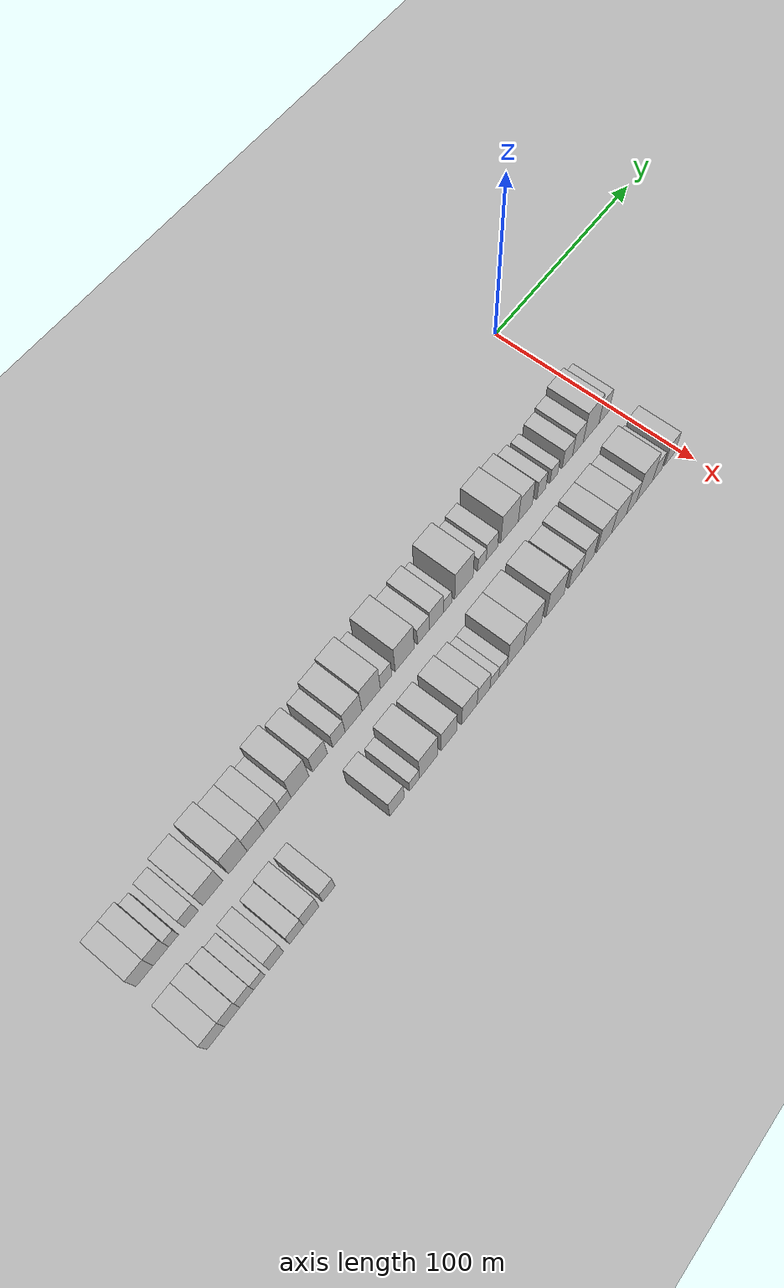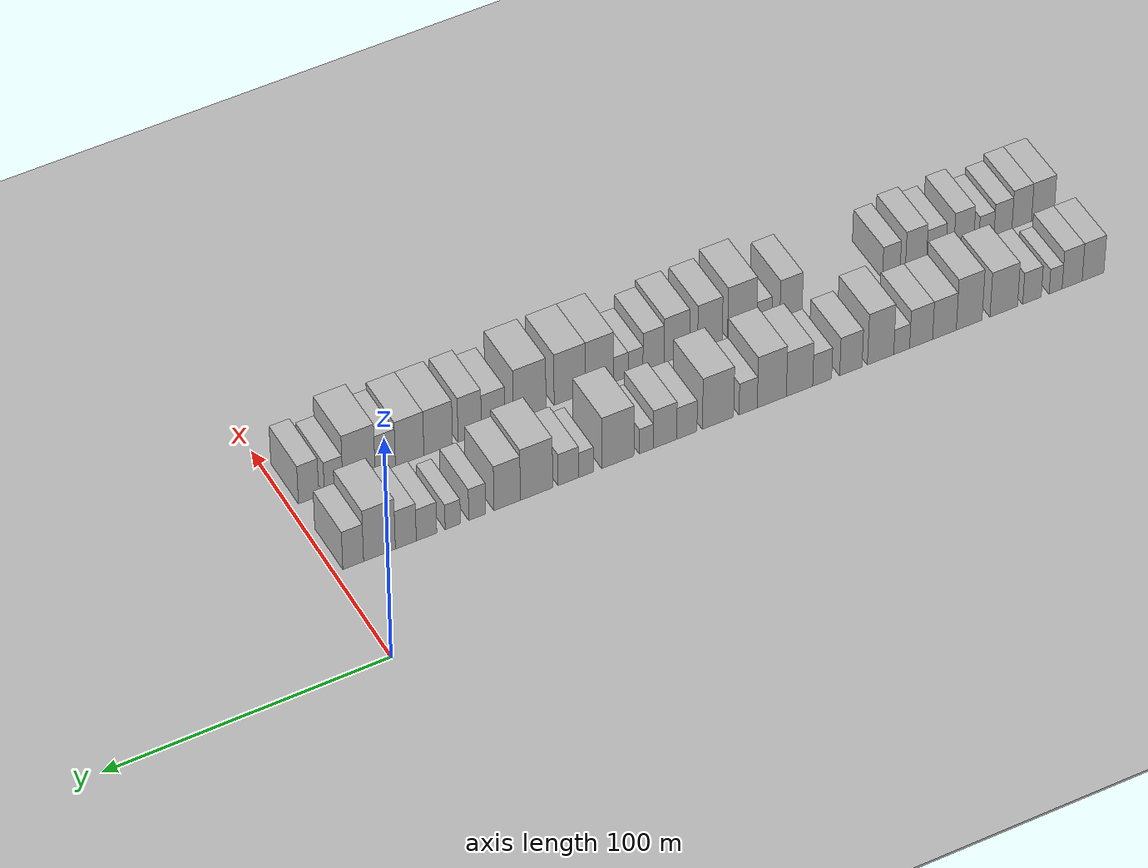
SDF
<sdf version="1.6">
 <world name="default">
  <include><name>ground_plane_1</name><uri>model://HANNAS_ground_plane</uri></include>
  <include>
   <name>ground_plane_2</name>
   <uri>model://HANNAS_ground_plane</uri>
   <pose>100 0 0  0 0 0</pose>
  </include>
  <model name="building_1">
   <static>1</static>
   <pose>50.0000 -279.8190 0 0.000000 0.000000 0.000000</pose>
   <link name="link">
    <pose>0 0 9.00 0 0 0</pose>
    <collision name="collision"><geometry><box><size>20.0000 8.3619 18.0000</size></box></geometry></collision>
    <visual name="visual">
     <cast_shadows>0</cast_shadows>
     <geometry><box><size>20.0000 8.3619 18.0000</size></box></geometry>
     <material>
      <script>
       <uri>model://HANNAS_wall/materials/scripts</uri>
       <uri>model://HANNAS_wall/materials/textures</uri>
       <name>vrc/HANNAS_wall</name>
      </script>
     </material>
    </visual>
   </link>
  </model>
  <model name="building_2">
   <static>1</static>
   <pose>50.0000 -271.7829 0 0.000000 0.000000 0.000000</pose>
   <link name="link">
    <pose>0 0 9.00 0 0 0</pose>
    <collision name="collision"><geometry><box><size>20.0000 7.7102 18.0000</size></box></geometry></collision>
    <visual name="visual">
     <cast_shadows>0</cast_shadows>
     <geometry><box><size>20.0000 7.7102 18.0000</size></box></geometry>
     <material>
      <script>
       <uri>model://HANNAS_wall/materials/scripts</uri>
       <uri>model://HANNAS_wall/materials/textures</uri>
       <name>vrc/HANNAS_wall</name>
      </script>
     </material>
    </visual>
   </link>
  </model>
  <model name="building_3">
   <static>1</static>
   <pose>50.0000 -265.4402 0 0.000000 0.000000 0.000000</pose>
   <link name="link">
    <pose>0 0 6.00 0 0 0</pose>
    <collision name="collision"><geometry><box><size>20.0000 4.9754 12.0000</size></box></geometry></collision>
    <visual name="visual">
     <cast_shadows>0</cast_shadows>
     <geometry><box><size>20.0000 4.9754 12.0000</size></box></geometry>
     <material>
      <script>
       <uri>model://HANNAS_wall/materials/scripts</uri>
       <uri>model://HANNAS_wall/materials/textures</uri>
       <name>vrc/HANNAS_wall</name>
      </script>
     </material>
    </visual>
   </link>
  </model>
  <model name="building_4">
   <static>1</static>
   <pose>50.0000 -256.4035 0 0.000000 0.000000 0.000000</pose>
   <link name="link">
    <pose>0 0 7.50 0 0 0</pose>
    <collision name="collision"><geometry><box><size>20.0000 7.0979 15.0000</size></box></geometry></collision>
    <visual name="visual">
     <cast_shadows>0</cast_shadows>
     <geometry><box><size>20.0000 7.0979 15.0000</size></box></geometry>
     <material>
      <script>
       <uri>model://HANNAS_wall/materials/scripts</uri>
       <uri>model://HANNAS_wall/materials/textures</uri>
       <name>vrc/HANNAS_wall</name>
      </script>
     </material>
    </visual>
   </link>
  </model>
  <model name="building_5">
   <static>1</static>
   <pose>50.0000 -245.6082 0 0.000000 0.000000 0.000000</pose>
   <link name="link">
    <pose>0 0 10.50 0 0 0</pose>
    <collision name="collision"><geometry><box><size>20.0000 10.4927 21.0000</size></box></geometry></collision>
    <visual name="visual">
     <cast_shadows>0</cast_shadows>
     <geometry><box><size>20.0000 10.4927 21.0000</size></box></geometry>
     <material>
      <script>
       <uri>model://HANNAS_wall/materials/scripts</uri>
       <uri>model://HANNAS_wall/materials/textures</uri>
       <name>vrc/HANNAS_wall</name>
      </script>
     </material>
    </visual>
   </link>
  </model>
  <model name="building_6">
   <static>1</static>
   <pose>50.0000 -232.4707 0 0.000000 0.000000 0.000000</pose>
   <link name="link">
    <pose>0 0 12.00 0 0 0</pose>
    <collision name="collision"><geometry><box><size>20.0000 9.7823 24.0000</size></box></geometry></collision>
    <visual name="visual">
     <cast_shadows>0</cast_shadows>
     <geometry><box><size>20.0000 9.7823 24.0000</size></box></geometry>
     <material>
      <script>
       <uri>model://HANNAS_wall/materials/scripts</uri>
       <uri>model://HANNAS_wall/materials/textures</uri>
       <name>vrc/HANNAS_wall</name>
      </script>
     </material>
    </visual>
   </link>
  </model>
  <model name="building_7">
   <static>1</static>
   <pose>50.0000 -223.0820 0 0.000000 0.000000 0.000000</pose>
   <link name="link">
    <pose>0 0 9.00 0 0 0</pose>
    <collision name="collision"><geometry><box><size>20.0000 8.9953 18.0000</size></box></geometry></collision>
    <visual name="visual">
     <cast_shadows>0</cast_shadows>
     <geometry><box><size>20.0000 8.9953 18.0000</size></box></geometry>
     <material>
      <script>
       <uri>model://HANNAS_wall/materials/scripts</uri>
       <uri>model://HANNAS_wall/materials/textures</uri>
       <name>vrc/HANNAS_wall</name>
      </script>
     </material>
    </visual>
   </link>
  </model>
  <model name="building_8">
   <static>1</static>
   <pose>50.0000 -214.2455 0 0.000000 0.000000 0.000000</pose>
   <link name="link">
    <pose>0 0 9.00 0 0 0</pose>
    <collision name="collision"><geometry><box><size>20.0000 8.6777 18.0000</size></box></geometry></collision>
    <visual name="visual">
     <cast_shadows>0</cast_shadows>
     <geometry><box><size>20.0000 8.6777 18.0000</size></box></geometry>
     <material>
      <script>
       <uri>model://HANNAS_wall/materials/scripts</uri>
       <uri>model://HANNAS_wall/materials/textures</uri>
       <name>vrc/HANNAS_wall</name>
      </script>
     </material>
    </visual>
   </link>
  </model>
  <model name="building_9">
   <static>1</static>
   <pose>50.0000 -206.9102 0 0.000000 0.000000 0.000000</pose>
   <link name="link">
    <pose>0 0 6.00 0 0 0</pose>
    <collision name="collision"><geometry><box><size>20.0000 5.9929 12.0000</size></box></geometry></collision>
    <visual name="visual">
     <cast_shadows>0</cast_shadows>
     <geometry><box><size>20.0000 5.9929 12.0000</size></box></geometry>
     <material>
      <script>
       <uri>model://HANNAS_wall/materials/scripts</uri>
       <uri>model://HANNAS_wall/materials/textures</uri>
       <name>vrc/HANNAS_wall</name>
      </script>
     </material>
    </visual>
   </link>
  </model>
  <model name="building_10">
   <static>1</static>
   <pose>50.0000 -198.9653 0 0.000000 0.000000 0.000000</pose>
   <link name="link">
    <pose>0 0 12.00 0 0 0</pose>
    <collision name="collision"><geometry><box><size>20.0000 9.8969 24.0000</size></box></geometry></collision>
    <visual name="visual">
     <cast_shadows>0</cast_shadows>
     <geometry><box><size>20.0000 9.8969 24.0000</size></box></geometry>
     <material>
      <script>
       <uri>model://HANNAS_wall/materials/scripts</uri>
       <uri>model://HANNAS_wall/materials/textures</uri>
       <name>vrc/HANNAS_wall</name>
      </script>
     </material>
    </visual>
   </link>
  </model>
  <model name="building_11">
   <static>1</static>
   <pose>50.0000 -187.8194 0 0.000000 0.000000 0.000000</pose>
   <link name="link">
    <pose>0 0 9.00 0 0 0</pose>
    <collision name="collision"><geometry><box><size>20.0000 8.3949 18.0000</size></box></geometry></collision>
    <visual name="visual">
     <cast_shadows>0</cast_shadows>
     <geometry><box><size>20.0000 8.3949 18.0000</size></box></geometry>
     <material>
      <script>
       <uri>model://HANNAS_wall/materials/scripts</uri>
       <uri>model://HANNAS_wall/materials/textures</uri>
       <name>vrc/HANNAS_wall</name>
      </script>
     </material>
    </visual>
   </link>
  </model>
  <model name="building_12">
   <static>1</static>
   <pose>50.0000 -177.0867 0 0.000000 0.000000 0.000000</pose>
   <link name="link">
    <pose>0 0 7.50 0 0 0</pose>
    <collision name="collision"><geometry><box><size>20.0000 7.0706 15.0000</size></box></geometry></collision>
    <visual name="visual">
     <cast_shadows>0</cast_shadows>
     <geometry><box><size>20.0000 7.0706 15.0000</size></box></geometry>
     <material>
      <script>
       <uri>model://HANNAS_wall/materials/scripts</uri>
       <uri>model://HANNAS_wall/materials/textures</uri>
       <name>vrc/HANNAS_wall</name>
      </script>
     </material>
    </visual>
   </link>
  </model>
  <model name="building_13">
   <static>1</static>
   <pose>50.0000 -168.6290 0 0.000000 0.000000 0.000000</pose>
   <link name="link">
    <pose>0 0 10.50 0 0 0</pose>
    <collision name="collision"><geometry><box><size>20.0000 9.8448 21.0000</size></box></geometry></collision>
    <visual name="visual">
     <cast_shadows>0</cast_shadows>
     <geometry><box><size>20.0000 9.8448 21.0000</size></box></geometry>
     <material>
      <script>
       <uri>model://HANNAS_wall/materials/scripts</uri>
       <uri>model://HANNAS_wall/materials/textures</uri>
       <name>vrc/HANNAS_wall</name>
      </script>
     </material>
    </visual>
   </link>
  </model>
  <model name="building_14">
   <static>1</static>
   <pose>50.0000 -158.3106 0 0.000000 0.000000 0.000000</pose>
   <link name="link">
    <pose>0 0 12.00 0 0 0</pose>
    <collision name="collision"><geometry><box><size>20.0000 10.7921 24.0000</size></box></geometry></collision>
    <visual name="visual">
     <cast_shadows>0</cast_shadows>
     <geometry><box><size>20.0000 10.7921 24.0000</size></box></geometry>
     <material>
      <script>
       <uri>model://HANNAS_wall/materials/scripts</uri>
       <uri>model://HANNAS_wall/materials/textures</uri>
       <name>vrc/HANNAS_wall</name>
      </script>
     </material>
    </visual>
   </link>
  </model>
  <model name="building_15">
   <static>1</static>
   <pose>50.0000 -149.5389 0 0.000000 0.000000 0.000000</pose>
   <link name="link">
    <pose>0 0 7.50 0 0 0</pose>
    <collision name="collision"><geometry><box><size>20.0000 6.7513 15.0000</size></box></geometry></collision>
    <visual name="visual">
     <cast_shadows>0</cast_shadows>
     <geometry><box><size>20.0000 6.7513 15.0000</size></box></geometry>
     <material>
      <script>
       <uri>model://HANNAS_wall/materials/scripts</uri>
       <uri>model://HANNAS_wall/materials/textures</uri>
       <name>vrc/HANNAS_wall</name>
      </script>
     </material>
    </visual>
   </link>
  </model>
  <model name="building_16">
   <static>1</static>
   <pose>50.0000 -138.3980 0 0.000000 0.000000 0.000000</pose>
   <link name="link">
    <pose>0 0 12.00 0 0 0</pose>
    <collision name="collision"><geometry><box><size>20.0000 11.5305 24.0000</size></box></geometry></collision>
    <visual name="visual">
     <cast_shadows>0</cast_shadows>
     <geometry><box><size>20.0000 11.5305 24.0000</size></box></geometry>
     <material>
      <script>
       <uri>model://HANNAS_wall/materials/scripts</uri>
       <uri>model://HANNAS_wall/materials/textures</uri>
       <name>vrc/HANNAS_wall</name>
      </script>
     </material>
    </visual>
   </link>
  </model>
  <model name="building_17">
   <static>1</static>
   <pose>50.0000 -126.9144 0 0.000000 0.000000 0.000000</pose>
   <link name="link">
    <pose>0 0 7.50 0 0 0</pose>
    <collision name="collision"><geometry><box><size>20.0000 7.4367 15.0000</size></box></geometry></collision>
    <visual name="visual">
     <cast_shadows>0</cast_shadows>
     <geometry><box><size>20.0000 7.4367 15.0000</size></box></geometry>
     <material>
      <script>
       <uri>model://HANNAS_wall/materials/scripts</uri>
       <uri>model://HANNAS_wall/materials/textures</uri>
       <name>vrc/HANNAS_wall</name>
      </script>
     </material>
    </visual>
   </link>
  </model>
  <model name="building_18">
   <static>1</static>
   <pose>50.0000 -118.8978 0 0.000000 0.000000 0.000000</pose>
   <link name="link">
    <pose>0 0 9.00 0 0 0</pose>
    <collision name="collision"><geometry><box><size>20.0000 8.5964 18.0000</size></box></geometry></collision>
    <visual name="visual">
     <cast_shadows>0</cast_shadows>
     <geometry><box><size>20.0000 8.5964 18.0000</size></box></geometry>
     <material>
      <script>
       <uri>model://HANNAS_wall/materials/scripts</uri>
       <uri>model://HANNAS_wall/materials/textures</uri>
       <name>vrc/HANNAS_wall</name>
      </script>
     </material>
    </visual>
   </link>
  </model>
  <model name="building_19">
   <static>1</static>
   <pose>50.0000 -112.0478 0 0.000000 0.000000 0.000000</pose>
   <link name="link">
    <pose>0 0 6.00 0 0 0</pose>
    <collision name="collision"><geometry><box><size>20.0000 5.1036 12.0000</size></box></geometry></collision>
    <visual name="visual">
     <cast_shadows>0</cast_shadows>
     <geometry><box><size>20.0000 5.1036 12.0000</size></box></geometry>
     <material>
      <script>
       <uri>model://HANNAS_wall/materials/scripts</uri>
       <uri>model://HANNAS_wall/materials/textures</uri>
       <name>vrc/HANNAS_wall</name>
      </script>
     </material>
    </visual>
   </link>
  </model>
  <model name="building_20">
   <static>1</static>
   <pose>50.0000 -101.6275 0 0.000000 0.000000 0.000000</pose>
   <link name="link">
    <pose>0 0 12.00 0 0 0</pose>
    <collision name="collision"><geometry><box><size>20.0000 11.7370 24.0000</size></box></geometry></collision>
    <visual name="visual">
     <cast_shadows>0</cast_shadows>
     <geometry><box><size>20.0000 11.7370 24.0000</size></box></geometry>
     <material>
      <script>
       <uri>model://HANNAS_wall/materials/scripts</uri>
       <uri>model://HANNAS_wall/materials/textures</uri>
       <name>vrc/HANNAS_wall</name>
      </script>
     </material>
    </visual>
   </link>
  </model>
  <model name="building_21">
   <static>1</static>
   <pose>50.0000 -90.0536 0 0.000000 0.000000 0.000000</pose>
   <link name="link">
    <pose>0 0 6.00 0 0 0</pose>
    <collision name="collision"><geometry><box><size>20.0000 5.4109 12.0000</size></box></geometry></collision>
    <visual name="visual">
     <cast_shadows>0</cast_shadows>
     <geometry><box><size>20.0000 5.4109 12.0000</size></box></geometry>
     <material>
      <script>
       <uri>model://HANNAS_wall/materials/scripts</uri>
       <uri>model://HANNAS_wall/materials/textures</uri>
       <name>vrc/HANNAS_wall</name>
      </script>
     </material>
    </visual>
   </link>
  </model>
  <model name="building_22">
   <static>1</static>
   <pose>50.0000 -83.6219 0 0.000000 0.000000 0.000000</pose>
   <link name="link">
    <pose>0 0 7.50 0 0 0</pose>
    <collision name="collision"><geometry><box><size>20.0000 7.4524 15.0000</size></box></geometry></collision>
    <visual name="visual">
     <cast_shadows>0</cast_shadows>
     <geometry><box><size>20.0000 7.4524 15.0000</size></box></geometry>
     <material>
      <script>
       <uri>model://HANNAS_wall/materials/scripts</uri>
       <uri>model://HANNAS_wall/materials/textures</uri>
       <name>vrc/HANNAS_wall</name>
      </script>
     </material>
    </visual>
   </link>
  </model>
  <model name="building_23">
   <static>1</static>
   <pose>50.0000 -72.0594 0 0.000000 0.000000 0.000000</pose>
   <link name="link">
    <pose>0 0 12.00 0 0 0</pose>
    <collision name="collision"><geometry><box><size>20.0000 11.6725 24.0000</size></box></geometry></collision>
    <visual name="visual">
     <cast_shadows>0</cast_shadows>
     <geometry><box><size>20.0000 11.6725 24.0000</size></box></geometry>
     <material>
      <script>
       <uri>model://HANNAS_wall/materials/scripts</uri>
       <uri>model://HANNAS_wall/materials/textures</uri>
       <name>vrc/HANNAS_wall</name>
      </script>
     </material>
    </visual>
   </link>
  </model>
  <model name="building_24">
   <static>1</static>
   <pose>50.0000 -61.4678 0 0.000000 0.000000 0.000000</pose>
   <link name="link">
    <pose>0 0 10.50 0 0 0</pose>
    <collision name="collision"><geometry><box><size>20.0000 9.5107 21.0000</size></box></geometry></collision>
    <visual name="visual">
     <cast_shadows>0</cast_shadows>
     <geometry><box><size>20.0000 9.5107 21.0000</size></box></geometry>
     <material>
      <script>
       <uri>model://HANNAS_wall/materials/scripts</uri>
       <uri>model://HANNAS_wall/materials/textures</uri>
       <name>vrc/HANNAS_wall</name>
      </script>
     </material>
    </visual>
   </link>
  </model>
  <model name="building_25">
   <static>1</static>
   <pose>50.0000 -50.6916 0 0.000000 0.000000 0.000000</pose>
   <link name="link">
    <pose>0 0 7.50 0 0 0</pose>
    <collision name="collision"><geometry><box><size>20.0000 6.0417 15.0000</size></box></geometry></collision>
    <visual name="visual">
     <cast_shadows>0</cast_shadows>
     <geometry><box><size>20.0000 6.0417 15.0000</size></box></geometry>
     <material>
      <script>
       <uri>model://HANNAS_wall/materials/scripts</uri>
       <uri>model://HANNAS_wall/materials/textures</uri>
       <name>vrc/HANNAS_wall</name>
      </script>
     </material>
    </visual>
   </link>
  </model>
  <model name="building_26">
   <static>1</static>
   <pose>50.0000 -41.9416 0 0.000000 0.000000 0.000000</pose>
   <link name="link">
    <pose>0 0 6.00 0 0 0</pose>
    <collision name="collision"><geometry><box><size>20.0000 5.4582 12.0000</size></box></geometry></collision>
    <visual name="visual">
     <cast_shadows>0</cast_shadows>
     <geometry><box><size>20.0000 5.4582 12.0000</size></box></geometry>
     <material>
      <script>
       <uri>model://HANNAS_wall/materials/scripts</uri>
       <uri>model://HANNAS_wall/materials/textures</uri>
       <name>vrc/HANNAS_wall</name>
      </script>
     </material>
    </visual>
   </link>
  </model>
  <model name="building_27">
   <static>1</static>
   <pose>50.0000 -32.5497 0 0.000000 0.000000 0.000000</pose>
   <link name="link">
    <pose>0 0 7.50 0 0 0</pose>
    <collision name="collision"><geometry><box><size>20.0000 7.3256 15.0000</size></box></geometry></collision>
    <visual name="visual">
     <cast_shadows>0</cast_shadows>
     <geometry><box><size>20.0000 7.3256 15.0000</size></box></geometry>
     <material>
      <script>
       <uri>model://HANNAS_wall/materials/scripts</uri>
       <uri>model://HANNAS_wall/materials/textures</uri>
       <name>vrc/HANNAS_wall</name>
      </script>
     </material>
    </visual>
   </link>
  </model>
  <model name="building_28">
   <static>1</static>
   <pose>50.0000 -25.1557 0 0.000000 0.000000 0.000000</pose>
   <link name="link">
    <pose>0 0 9.00 0 0 0</pose>
    <collision name="collision"><geometry><box><size>20.0000 7.4624 18.0000</size></box></geometry></collision>
    <visual name="visual">
     <cast_shadows>0</cast_shadows>
     <geometry><box><size>20.0000 7.4624 18.0000</size></box></geometry>
     <material>
      <script>
       <uri>model://HANNAS_wall/materials/scripts</uri>
       <uri>model://HANNAS_wall/materials/textures</uri>
       <name>vrc/HANNAS_wall</name>
      </script>
     </material>
    </visual>
   </link>
  </model>
  <model name="building_29">
   <static>1</static>
   <pose>50.0000 -15.7782 0 0.000000 0.000000 0.000000</pose>
   <link name="link">
    <pose>0 0 12.00 0 0 0</pose>
    <collision name="collision"><geometry><box><size>20.0000 11.2925 24.0000</size></box></geometry></collision>
    <visual name="visual">
     <cast_shadows>0</cast_shadows>
     <geometry><box><size>20.0000 11.2925 24.0000</size></box></geometry>
     <material>
      <script>
       <uri>model://HANNAS_wall/materials/scripts</uri>
       <uri>model://HANNAS_wall/materials/textures</uri>
       <name>vrc/HANNAS_wall</name>
      </script>
     </material>
    </visual>
   </link>
  </model>
  <model name="building_30">
   <static>1</static>
   <pose>50.0000 -6.4503 0 0.000000 0.000000 0.000000</pose>
   <link name="link">
    <pose>0 0 9.00 0 0 0</pose>
    <collision name="collision"><geometry><box><size>20.0000 7.3634 18.0000</size></box></geometry></collision>
    <visual name="visual">
     <cast_shadows>0</cast_shadows>
     <geometry><box><size>20.0000 7.3634 18.0000</size></box></geometry>
     <material>
      <script>
       <uri>model://HANNAS_wall/materials/scripts</uri>
       <uri>model://HANNAS_wall/materials/textures</uri>
       <name>vrc/HANNAS_wall</name>
      </script>
     </material>
    </visual>
   </link>
  </model>
  <model name="building_61">
   <static>1</static>
   <pose>82.0000 -279.6116 0 0.000000 0.000000 0.000000</pose>
   <link name="link">
    <pose>0 0 9.00 0 0 0</pose>
    <collision name="collision"><geometry><box><size>20.0000 8.7768 18.0000</size></box></geometry></collision>
    <visual name="visual">
     <cast_shadows>0</cast_shadows>
     <geometry><box><size>20.0000 8.7768 18.0000</size></box></geometry>
     <material>
      <script>
       <uri>model://HANNAS_wall/materials/scripts</uri>
       <uri>model://HANNAS_wall/materials/textures</uri>
       <name>vrc/HANNAS_wall</name>
      </script>
     </material>
    </visual>
   </link>
  </model>
  <model name="building_62">
   <static>1</static>
   <pose>82.0000 -271.4348 0 0.000000 0.000000 0.000000</pose>
   <link name="link">
    <pose>0 0 9.00 0 0 0</pose>
    <collision name="collision"><geometry><box><size>20.0000 7.5769 18.0000</size></box></geometry></collision>
    <visual name="visual">
     <cast_shadows>0</cast_shadows>
     <geometry><box><size>20.0000 7.5769 18.0000</size></box></geometry>
     <material>
      <script>
       <uri>model://HANNAS_wall/materials/scripts</uri>
       <uri>model://HANNAS_wall/materials/textures</uri>
       <name>vrc/HANNAS_wall</name>
      </script>
     </material>
    </visual>
   </link>
  </model>
  <model name="building_63">
   <static>1</static>
   <pose>82.0000 -264.1748 0 0.000000 0.000000 0.000000</pose>
   <link name="link">
    <pose>0 0 7.50 0 0 0</pose>
    <collision name="collision"><geometry><box><size>20.0000 6.9432 15.0000</size></box></geometry></collision>
    <visual name="visual">
     <cast_shadows>0</cast_shadows>
     <geometry><box><size>20.0000 6.9432 15.0000</size></box></geometry>
     <material>
      <script>
       <uri>model://HANNAS_wall/materials/scripts</uri>
       <uri>model://HANNAS_wall/materials/textures</uri>
       <name>vrc/HANNAS_wall</name>
      </script>
     </material>
    </visual>
   </link>
  </model>
  <model name="building_64">
   <static>1</static>
   <pose>82.0000 -257.7788 0 0.000000 0.000000 0.000000</pose>
   <link name="link">
    <pose>0 0 6.00 0 0 0</pose>
    <collision name="collision"><geometry><box><size>20.0000 5.8489 12.0000</size></box></geometry></collision>
    <visual name="visual">
     <cast_shadows>0</cast_shadows>
     <geometry><box><size>20.0000 5.8489 12.0000</size></box></geometry>
     <material>
      <script>
       <uri>model://HANNAS_wall/materials/scripts</uri>
       <uri>model://HANNAS_wall/materials/textures</uri>
       <name>vrc/HANNAS_wall</name>
      </script>
     </material>
    </visual>
   </link>
  </model>
  <model name="building_65">
   <static>1</static>
   <pose>82.0000 -249.0392 0 0.000000 0.000000 0.000000</pose>
   <link name="link">
    <pose>0 0 9.00 0 0 0</pose>
    <collision name="collision"><geometry><box><size>20.0000 7.6304 18.0000</size></box></geometry></collision>
    <visual name="visual">
     <cast_shadows>0</cast_shadows>
     <geometry><box><size>20.0000 7.6304 18.0000</size></box></geometry>
     <material>
      <script>
       <uri>model://HANNAS_wall/materials/scripts</uri>
       <uri>model://HANNAS_wall/materials/textures</uri>
       <name>vrc/HANNAS_wall</name>
      </script>
     </material>
    </visual>
   </link>
  </model>
  <model name="building_66">
   <static>1</static>
   <pose>82.0000 -238.4993 0 0.000000 0.000000 0.000000</pose>
   <link name="link">
    <pose>0 0 7.50 0 0 0</pose>
    <collision name="collision"><geometry><box><size>20.0000 7.4493 15.0000</size></box></geometry></collision>
    <visual name="visual">
     <cast_shadows>0</cast_shadows>
     <geometry><box><size>20.0000 7.4493 15.0000</size></box></geometry>
     <material>
      <script>
       <uri>model://HANNAS_wall/materials/scripts</uri>
       <uri>model://HANNAS_wall/materials/textures</uri>
       <name>vrc/HANNAS_wall</name>
      </script>
     </material>
    </visual>
   </link>
  </model>
  <model name="building_67">
   <static>1</static>
   <pose>82.0000 -230.7380 0 0.000000 0.000000 0.000000</pose>
   <link name="link">
    <pose>0 0 9.00 0 0 0</pose>
    <collision name="collision"><geometry><box><size>20.0000 8.0734 18.0000</size></box></geometry></collision>
    <visual name="visual">
     <cast_shadows>0</cast_shadows>
     <geometry><box><size>20.0000 8.0734 18.0000</size></box></geometry>
     <material>
      <script>
       <uri>model://HANNAS_wall/materials/scripts</uri>
       <uri>model://HANNAS_wall/materials/textures</uri>
       <name>vrc/HANNAS_wall</name>
      </script>
     </material>
    </visual>
   </link>
  </model>
  <model name="building_68">
   <static>1</static>
   <pose>82.0000 -221.3300 0 0.000000 0.000000 0.000000</pose>
   <link name="link">
    <pose>0 0 7.50 0 0 0</pose>
    <collision name="collision"><geometry><box><size>20.0000 6.7426 15.0000</size></box></geometry></collision>
    <visual name="visual">
     <cast_shadows>0</cast_shadows>
     <geometry><box><size>20.0000 6.7426 15.0000</size></box></geometry>
     <material>
      <script>
       <uri>model://HANNAS_wall/materials/scripts</uri>
       <uri>model://HANNAS_wall/materials/textures</uri>
       <name>vrc/HANNAS_wall</name>
      </script>
     </material>
    </visual>
   </link>
  </model>
  <model name="building_69">
   <static>1</static>
   <pose>82.0000 -183.3673 0 0.000000 0.000000 0.000000</pose>
   <link name="link">
    <pose>0 0 9.00 0 0 0</pose>
    <collision name="collision"><geometry><box><size>20.0000 8.3942 18.0000</size></box></geometry></collision>
    <visual name="visual">
     <cast_shadows>0</cast_shadows>
     <geometry><box><size>20.0000 8.3942 18.0000</size></box></geometry>
     <material>
      <script>
       <uri>model://HANNAS_wall/materials/scripts</uri>
       <uri>model://HANNAS_wall/materials/textures</uri>
       <name>vrc/HANNAS_wall</name>
      </script>
     </material>
    </visual>
   </link>
  </model>
  <model name="building_70">
   <static>1</static>
   <pose>82.0000 -173.2988 0 0.000000 0.000000 0.000000</pose>
   <link name="link">
    <pose>0 0 6.00 0 0 0</pose>
    <collision name="collision"><geometry><box><size>20.0000 5.7428 12.0000</size></box></geometry></collision>
    <visual name="visual">
     <cast_shadows>0</cast_shadows>
     <geometry><box><size>20.0000 5.7428 12.0000</size></box></geometry>
     <material>
      <script>
       <uri>model://HANNAS_wall/materials/scripts</uri>
       <uri>model://HANNAS_wall/materials/textures</uri>
       <name>vrc/HANNAS_wall</name>
      </script>
     </material>
    </visual>
   </link>
  </model>
  <model name="building_71">
   <static>1</static>
   <pose>82.0000 -164.9844 0 0.000000 0.000000 0.000000</pose>
   <link name="link">
    <pose>0 0 12.00 0 0 0</pose>
    <collision name="collision"><geometry><box><size>20.0000 10.8860 24.0000</size></box></geometry></collision>
    <visual name="visual">
     <cast_shadows>0</cast_shadows>
     <geometry><box><size>20.0000 10.8860 24.0000</size></box></geometry>
     <material>
      <script>
       <uri>model://HANNAS_wall/materials/scripts</uri>
       <uri>model://HANNAS_wall/materials/textures</uri>
       <name>vrc/HANNAS_wall</name>
      </script>
     </material>
    </visual>
   </link>
  </model>
  <model name="building_72">
   <static>1</static>
   <pose>82.0000 -152.9470 0 0.000000 0.000000 0.000000</pose>
   <link name="link">
    <pose>0 0 10.50 0 0 0</pose>
    <collision name="collision"><geometry><box><size>20.0000 9.1887 21.0000</size></box></geometry></collision>
    <visual name="visual">
     <cast_shadows>0</cast_shadows>
     <geometry><box><size>20.0000 9.1887 21.0000</size></box></geometry>
     <material>
      <script>
       <uri>model://HANNAS_wall/materials/scripts</uri>
       <uri>model://HANNAS_wall/materials/textures</uri>
       <name>vrc/HANNAS_wall</name>
      </script>
     </material>
    </visual>
   </link>
  </model>
  <model name="building_73">
   <static>1</static>
   <pose>82.0000 -140.6547 0 0.000000 0.000000 0.000000</pose>
   <link name="link">
    <pose>0 0 10.50 0 0 0</pose>
    <collision name="collision"><geometry><box><size>20.0000 9.3959 21.0000</size></box></geometry></collision>
    <visual name="visual">
     <cast_shadows>0</cast_shadows>
     <geometry><box><size>20.0000 9.3959 21.0000</size></box></geometry>
     <material>
      <script>
       <uri>model://HANNAS_wall/materials/scripts</uri>
       <uri>model://HANNAS_wall/materials/textures</uri>
       <name>vrc/HANNAS_wall</name>
      </script>
     </material>
    </visual>
   </link>
  </model>
  <model name="building_74">
   <static>1</static>
   <pose>82.0000 -132.0111 0 0.000000 0.000000 0.000000</pose>
   <link name="link">
    <pose>0 0 9.00 0 0 0</pose>
    <collision name="collision"><geometry><box><size>20.0000 7.8913 18.0000</size></box></geometry></collision>
    <visual name="visual">
     <cast_shadows>0</cast_shadows>
     <geometry><box><size>20.0000 7.8913 18.0000</size></box></geometry>
     <material>
      <script>
       <uri>model://HANNAS_wall/materials/scripts</uri>
       <uri>model://HANNAS_wall/materials/textures</uri>
       <name>vrc/HANNAS_wall</name>
      </script>
     </material>
    </visual>
   </link>
  </model>
  <model name="building_75">
   <static>1</static>
   <pose>82.0000 -125.3163 0 0.000000 0.000000 0.000000</pose>
   <link name="link">
    <pose>0 0 6.00 0 0 0</pose>
    <collision name="collision"><geometry><box><size>20.0000 5.4982 12.0000</size></box></geometry></collision>
    <visual name="visual">
     <cast_shadows>0</cast_shadows>
     <geometry><box><size>20.0000 5.4982 12.0000</size></box></geometry>
     <material>
      <script>
       <uri>model://HANNAS_wall/materials/scripts</uri>
       <uri>model://HANNAS_wall/materials/textures</uri>
       <name>vrc/HANNAS_wall</name>
      </script>
     </material>
    </visual>
   </link>
  </model>
  <model name="building_76">
   <static>1</static>
   <pose>82.0000 -119.8994 0 0.000000 0.000000 0.000000</pose>
   <link name="link">
    <pose>0 0 6.00 0 0 0</pose>
    <collision name="collision"><geometry><box><size>20.0000 5.3358 12.0000</size></box></geometry></collision>
    <visual name="visual">
     <cast_shadows>0</cast_shadows>
     <geometry><box><size>20.0000 5.3358 12.0000</size></box></geometry>
     <material>
      <script>
       <uri>model://HANNAS_wall/materials/scripts</uri>
       <uri>model://HANNAS_wall/materials/textures</uri>
       <name>vrc/HANNAS_wall</name>
      </script>
     </material>
    </visual>
   </link>
  </model>
  <model name="building_77">
   <static>1</static>
   <pose>82.0000 -112.0105 0 0.000000 0.000000 0.000000</pose>
   <link name="link">
    <pose>0 0 12.00 0 0 0</pose>
    <collision name="collision"><geometry><box><size>20.0000 10.4420 24.0000</size></box></geometry></collision>
    <visual name="visual">
     <cast_shadows>0</cast_shadows>
     <geometry><box><size>20.0000 10.4420 24.0000</size></box></geometry>
     <material>
      <script>
       <uri>model://HANNAS_wall/materials/scripts</uri>
       <uri>model://HANNAS_wall/materials/textures</uri>
       <name>vrc/HANNAS_wall</name>
      </script>
     </material>
    </visual>
   </link>
  </model>
  <model name="building_78">
   <static>1</static>
   <pose>82.0000 -101.0616 0 0.000000 0.000000 0.000000</pose>
   <link name="link">
    <pose>0 0 12.00 0 0 0</pose>
    <collision name="collision"><geometry><box><size>20.0000 11.4559 24.0000</size></box></geometry></collision>
    <visual name="visual">
     <cast_shadows>0</cast_shadows>
     <geometry><box><size>20.0000 11.4559 24.0000</size></box></geometry>
     <material>
      <script>
       <uri>model://HANNAS_wall/materials/scripts</uri>
       <uri>model://HANNAS_wall/materials/textures</uri>
       <name>vrc/HANNAS_wall</name>
      </script>
     </material>
    </visual>
   </link>
  </model>
  <model name="building_79">
   <static>1</static>
   <pose>82.0000 -86.3433 0 0.000000 0.000000 0.000000</pose>
   <link name="link">
    <pose>0 0 12.00 0 0 0</pose>
    <collision name="collision"><geometry><box><size>20.0000 11.9807 24.0000</size></box></geometry></collision>
    <visual name="visual">
     <cast_shadows>0</cast_shadows>
     <geometry><box><size>20.0000 11.9807 24.0000</size></box></geometry>
     <material>
      <script>
       <uri>model://HANNAS_wall/materials/scripts</uri>
       <uri>model://HANNAS_wall/materials/textures</uri>
       <name>vrc/HANNAS_wall</name>
      </script>
     </material>
    </visual>
   </link>
  </model>
  <model name="building_80">
   <static>1</static>
   <pose>82.0000 -73.0701 0 0.000000 0.000000 0.000000</pose>
   <link name="link">
    <pose>0 0 9.00 0 0 0</pose>
    <collision name="collision"><geometry><box><size>20.0000 8.5657 18.0000</size></box></geometry></collision>
    <visual name="visual">
     <cast_shadows>0</cast_shadows>
     <geometry><box><size>20.0000 8.5657 18.0000</size></box></geometry>
     <material>
      <script>
       <uri>model://HANNAS_wall/materials/scripts</uri>
       <uri>model://HANNAS_wall/materials/textures</uri>
       <name>vrc/HANNAS_wall</name>
      </script>
     </material>
    </visual>
   </link>
  </model>
  <model name="building_81">
   <static>1</static>
   <pose>82.0000 -64.5421 0 0.000000 0.000000 0.000000</pose>
   <link name="link">
    <pose>0 0 10.50 0 0 0</pose>
    <collision name="collision"><geometry><box><size>20.0000 8.4904 21.0000</size></box></geometry></collision>
    <visual name="visual">
     <cast_shadows>0</cast_shadows>
     <geometry><box><size>20.0000 8.4904 21.0000</size></box></geometry>
     <material>
      <script>
       <uri>model://HANNAS_wall/materials/scripts</uri>
       <uri>model://HANNAS_wall/materials/textures</uri>
       <name>vrc/HANNAS_wall</name>
      </script>
     </material>
    </visual>
   </link>
  </model>
  <model name="building_82">
   <static>1</static>
   <pose>82.0000 -53.1155 0 0.000000 0.000000 0.000000</pose>
   <link name="link">
    <pose>0 0 10.50 0 0 0</pose>
    <collision name="collision"><geometry><box><size>20.0000 10.3629 21.0000</size></box></geometry></collision>
    <visual name="visual">
     <cast_shadows>0</cast_shadows>
     <geometry><box><size>20.0000 10.3629 21.0000</size></box></geometry>
     <material>
      <script>
       <uri>model://HANNAS_wall/materials/scripts</uri>
       <uri>model://HANNAS_wall/materials/textures</uri>
       <name>vrc/HANNAS_wall</name>
      </script>
     </material>
    </visual>
   </link>
  </model>
  <model name="building_83">
   <static>1</static>
   <pose>82.0000 -42.7945 0 0.000000 0.000000 0.000000</pose>
   <link name="link">
    <pose>0 0 10.50 0 0 0</pose>
    <collision name="collision"><geometry><box><size>20.0000 10.2789 21.0000</size></box></geometry></collision>
    <visual name="visual">
     <cast_shadows>0</cast_shadows>
     <geometry><box><size>20.0000 10.2789 21.0000</size></box></geometry>
     <material>
      <script>
       <uri>model://HANNAS_wall/materials/scripts</uri>
       <uri>model://HANNAS_wall/materials/textures</uri>
       <name>vrc/HANNAS_wall</name>
      </script>
     </material>
    </visual>
   </link>
  </model>
  <model name="building_84">
   <static>1</static>
   <pose>82.0000 -34.0099 0 0.000000 0.000000 0.000000</pose>
   <link name="link">
    <pose>0 0 9.00 0 0 0</pose>
    <collision name="collision"><geometry><box><size>20.0000 7.2905 18.0000</size></box></geometry></collision>
    <visual name="visual">
     <cast_shadows>0</cast_shadows>
     <geometry><box><size>20.0000 7.2905 18.0000</size></box></geometry>
     <material>
      <script>
       <uri>model://HANNAS_wall/materials/scripts</uri>
       <uri>model://HANNAS_wall/materials/textures</uri>
       <name>vrc/HANNAS_wall</name>
      </script>
     </material>
    </visual>
   </link>
  </model>
  <model name="building_85">
   <static>1</static>
   <pose>82.0000 -24.5739 0 0.000000 0.000000 0.000000</pose>
   <link name="link">
    <pose>0 0 12.00 0 0 0</pose>
    <collision name="collision"><geometry><box><size>20.0000 11.5815 24.0000</size></box></geometry></collision>
    <visual name="visual">
     <cast_shadows>0</cast_shadows>
     <geometry><box><size>20.0000 11.5815 24.0000</size></box></geometry>
     <material>
      <script>
       <uri>model://HANNAS_wall/materials/scripts</uri>
       <uri>model://HANNAS_wall/materials/textures</uri>
       <name>vrc/HANNAS_wall</name>
      </script>
     </material>
    </visual>
   </link>
  </model>
  <model name="building_86">
   <static>1</static>
   <pose>82.0000 -15.4796 0 0.000000 0.000000 0.000000</pose>
   <link name="link">
    <pose>0 0 7.50 0 0 0</pose>
    <collision name="collision"><geometry><box><size>20.0000 6.6070 15.0000</size></box></geometry></collision>
    <visual name="visual">
     <cast_shadows>0</cast_shadows>
     <geometry><box><size>20.0000 6.6070 15.0000</size></box></geometry>
     <material>
      <script>
       <uri>model://HANNAS_wall/materials/scripts</uri>
       <uri>model://HANNAS_wall/materials/textures</uri>
       <name>vrc/HANNAS_wall</name>
      </script>
     </material>
    </visual>
   </link>
  </model>
  <model name="building_87">
   <static>1</static>
   <pose>82.0000 -6.5314 0 0.000000 0.000000 0.000000</pose>
   <link name="link">
    <pose>0 0 9.00 0 0 0</pose>
    <collision name="collision"><geometry><box><size>20.0000 7.2894 18.0000</size></box></geometry></collision>
    <visual name="visual">
     <cast_shadows>0</cast_shadows>
     <geometry><box><size>20.0000 7.2894 18.0000</size></box></geometry>
     <material>
      <script>
       <uri>model://HANNAS_wall/materials/scripts</uri>
       <uri>model://HANNAS_wall/materials/textures</uri>
       <name>vrc/HANNAS_wall</name>
      </script>
     </material>
    </visual>
   </link>
  </model>
 </world>
</sdf>
